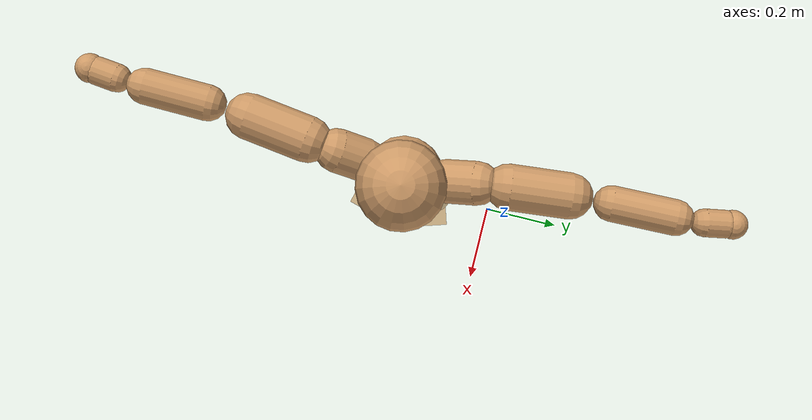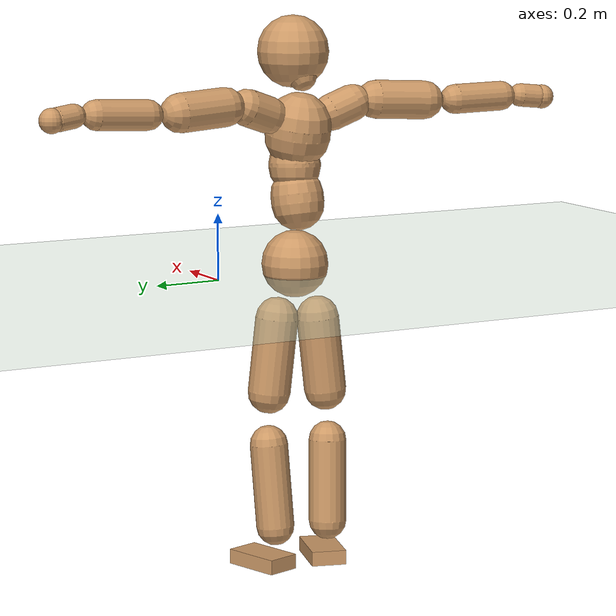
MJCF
<mujoco model="humanoid">
  <compiler coordinate="local"/>
  <default>
    <joint damping="0.0" armature="0.01" stiffness="0.0" limited="true"/>
    <geom conaffinity="1" condim="3" contype="7" margin="0.001" rgba="0.8 0.6 .4 1"/>
  </default>
  <asset>
    <texture type="skybox" builtin="gradient" rgb1=".4 .5 .6" rgb2="0 0 0" width="100" height="100"/>
    <texture builtin="flat" height="1278" mark="cross" markrgb="1 1 1" name="texgeom" random="0.01" rgb1="0.8 0.6 0.4" rgb2="0.8 0.6 0.4" type="cube" width="127"/>
    <texture builtin="checker" height="100" name="texplane" rgb1="0 0 0" rgb2="0.8 0.8 0.8" type="2d" width="100"/>
    <material name="MatPlane" reflectance="0.5" shininess="1" specular="1" texrepeat="60 60" texture="texplane"/>
    <material name="geom" texture="texgeom" texuniform="true"/>
  </asset>
  <worldbody>
    <light cutoff="100" diffuse="1 1 1" dir="-0 0 -1.3" directional="true" exponent="1" pos="0 0 1.3" specular=".1 .1 .1"/>
    <geom conaffinity="1" condim="3" name="floor" pos="0 0 0" rgba="0.8 0.9 0.8 1" size="100 100 .2" type="plane" material="MatPlane"/>
    <body name="Pelvis" pos="-0.003 -0.2538 0.0332">
      <freejoint name="Pelvis"/>
      <geom type="sphere" contype="1" conaffinity="1" density="500" size="0.1013" pos="0.0000 0.0000 0.0000" name="Pelvis"/>
      <body name="L_Hip" pos="-0.0161 0.0611 -0.0841">
        <joint name="L_Hip_x" type="hinge" pos="0 0 0" axis="1 0 0" stiffness="800" damping="80" armature="0.02" range="-180.0000 180.0000"/>
        <joint name="L_Hip_y" type="hinge" pos="0 0 0" axis="0 1 0" stiffness="800" damping="80" armature="0.02" range="-180.0000 180.0000"/>
        <joint name="L_Hip_z" type="hinge" pos="0 0 0" axis="0 0 1" stiffness="800" damping="80" armature="0.02" range="-180.0000 180.0000"/>
        <geom type="capsule" contype="1" conaffinity="1" density="500" fromto="0.0015 0.0081 -0.0750 0.0060 0.0323 -0.2999" size="0.0646" name="L_Hip"/>
        <body name="L_Knee" pos="0.0075 0.0403 -0.3748">
          <joint name="L_Knee_x" type="hinge" pos="0 0 0" axis="1 0 0" stiffness="800" damping="80" armature="0.02" range="-180.0000 180.0000"/>
          <joint name="L_Knee_y" type="hinge" pos="0 0 0" axis="0 1 0" stiffness="800" damping="80" armature="0.02" range="-180.0000 180.0000"/>
          <joint name="L_Knee_z" type="hinge" pos="0 0 0" axis="0 0 1" stiffness="800" damping="80" armature="0.02" range="-180.0000 180.0000"/>
          <geom type="capsule" contype="1" conaffinity="1" density="500" fromto="-0.0078 -0.0032 -0.0839 -0.0313 -0.0126 -0.3356" size="0.0574" name="L_Knee"/>
          <body name="L_Ankle" pos="-0.0391 -0.0158 -0.4195">
            <joint name="L_Ankle_x" type="hinge" pos="0 0 0" axis="1 0 0" stiffness="800" damping="80" armature="0.02" range="-180.0000 180.0000"/>
            <joint name="L_Ankle_y" type="hinge" pos="0 0 0" axis="0 1 0" stiffness="800" damping="80" armature="0.02" range="-180.0000 180.0000"/>
            <joint name="L_Ankle_z" type="hinge" pos="0 0 0" axis="0 0 1" stiffness="800" damping="80" armature="0.02" range="-180.0000 180.0000"/>
            <geom type="box" contype="1" conaffinity="1" density="500" pos="0.0618 0.0190 -0.0299" size="0.091 0.0517 0.0225" quat="0.9889 0.0000 0.0000 0.1487" name="L_Ankle"/>
            <body name="L_Toe" pos="0.1236 0.038 -0.0599">
              <joint name="L_Toe_x" type="hinge" pos="0 0 0" axis="1 0 0" stiffness="500" damping="50" armature="0.02" range="-180.0000 180.0000"/>
              <joint name="L_Toe_y" type="hinge" pos="0 0 0" axis="0 1 0" stiffness="500" damping="50" armature="0.02" range="-180.0000 180.0000"/>
              <joint name="L_Toe_z" type="hinge" pos="0 0 0" axis="0 0 1" stiffness="500" damping="50" armature="0.02" range="-180.0000 180.0000"/>
              <geom type="box" contype="1" conaffinity="1" density="500" pos="0.0000 0.0000 0.0286" size="0.0011 0.0026 0.0011" quat="0.9881 0.0000 0.0000 0.1537" name="L_Toe"/>
            </body>
          </body>
        </body>
      </body>
      <body name="R_Hip" pos="-0.0114 -0.0629 -0.0923">
        <joint name="R_Hip_x" type="hinge" pos="0 0 0" axis="1 0 0" stiffness="800" damping="80" armature="0.02" range="-180.0000 180.0000"/>
        <joint name="R_Hip_y" type="hinge" pos="0 0 0" axis="0 1 0" stiffness="800" damping="80" armature="0.02" range="-180.0000 180.0000"/>
        <joint name="R_Hip_z" type="hinge" pos="0 0 0" axis="0 0 1" stiffness="800" damping="80" armature="0.02" range="-180.0000 180.0000"/>
        <geom type="capsule" contype="1" conaffinity="1" density="500" fromto="-0.0011 -0.0080 -0.0748 -0.0043 -0.0321 -0.2992" size="0.0642" name="R_Hip"/>
        <body name="R_Knee" pos="-0.0053 -0.0401 -0.374">
          <joint name="R_Knee_x" type="hinge" pos="0 0 0" axis="1 0 0" stiffness="800" damping="80" armature="0.02" range="-180.0000 180.0000"/>
          <joint name="R_Knee_y" type="hinge" pos="0 0 0" axis="0 1 0" stiffness="800" damping="80" armature="0.02" range="-180.0000 180.0000"/>
          <joint name="R_Knee_z" type="hinge" pos="0 0 0" axis="0 0 1" stiffness="800" damping="80" armature="0.02" range="-180.0000 180.0000"/>
          <geom type="capsule" contype="1" conaffinity="1" density="500" fromto="-0.0072 0.0039 -0.0826 -0.0290 0.0155 -0.3303" size="0.0574" name="R_Knee"/>
          <body name="R_Ankle" pos="-0.0362 0.0194 -0.4128">
            <joint name="R_Ankle_x" type="hinge" pos="0 0 0" axis="1 0 0" stiffness="800" damping="80" armature="0.02" range="-180.0000 180.0000"/>
            <joint name="R_Ankle_y" type="hinge" pos="0 0 0" axis="0 1 0" stiffness="800" damping="80" armature="0.02" range="-180.0000 180.0000"/>
            <joint name="R_Ankle_z" type="hinge" pos="0 0 0" axis="0 0 1" stiffness="800" damping="80" armature="0.02" range="-180.0000 180.0000"/>
            <geom type="box" contype="1" conaffinity="1" density="500" pos="0.0659 -0.0181 -0.0304" size="0.0917 0.0529 0.0222" quat="0.9911 0.0000 0.0000 -0.1333" name="R_Ankle"/>
            <body name="R_Toe" pos="0.1318 -0.0361 -0.0608">
              <joint name="R_Toe_x" type="hinge" pos="0 0 0" axis="1 0 0" stiffness="500" damping="50" armature="0.02" range="-180.0000 180.0000"/>
              <joint name="R_Toe_y" type="hinge" pos="0 0 0" axis="0 1 0" stiffness="500" damping="50" armature="0.02" range="-180.0000 180.0000"/>
              <joint name="R_Toe_z" type="hinge" pos="0 0 0" axis="0 0 1" stiffness="500" damping="50" armature="0.02" range="-180.0000 180.0000"/>
              <geom type="box" contype="1" conaffinity="1" density="500" pos="0.0000 0.0000 0.0303" size="0.0011 0.0026 0.0011" quat="0.9922 0.0000 0.0000 -0.1244" name="R_Toe"/>
            </body>
          </body>
        </body>
      </body>
      <body name="Torso" pos="-0.0428 0.0044 0.1279">
        <joint name="Torso_x" type="hinge" pos="0 0 0" axis="1 0 0" stiffness="1000" damping="100" armature="0.02" range="-180.0000 180.0000"/>
        <joint name="Torso_y" type="hinge" pos="0 0 0" axis="0 1 0" stiffness="1000" damping="100" armature="0.02" range="-180.0000 180.0000"/>
        <joint name="Torso_z" type="hinge" pos="0 0 0" axis="0 0 1" stiffness="1000" damping="100" armature="0.02" range="-180.0000 180.0000"/>
        <geom type="capsule" contype="1" conaffinity="1" density="500" fromto="0.0159 0.0030 0.0857 0.0106 0.0020 0.0572" size="0.079236" name="Torso"/>
        <body name="Spine" pos="0.0265 0.005 0.1429">
          <joint name="Spine_x" type="hinge" pos="0 0 0" axis="1 0 0" stiffness="1000" damping="100" armature="0.02" range="-180.0000 180.0000"/>
          <joint name="Spine_y" type="hinge" pos="0 0 0" axis="0 1 0" stiffness="1000" damping="100" armature="0.02" range="-180.0000 180.0000"/>
          <joint name="Spine_z" type="hinge" pos="0 0 0" axis="0 0 1" stiffness="1000" damping="100" armature="0.02" range="-180.0000 180.0000"/>
          <geom type="capsule" contype="1" conaffinity="1" density="500" fromto="0.0025 -0.0013 0.0351 0.0016 -0.0009 0.0234" size="0.077934" name="Spine"/>
          <body name="Chest" pos="0.0041 -0.0022 0.0584">
            <joint name="Chest_x" type="hinge" pos="0 0 0" axis="1 0 0" stiffness="1000" damping="100" armature="0.02" range="-180.0000 180.0000"/>
            <joint name="Chest_y" type="hinge" pos="0 0 0" axis="0 1 0" stiffness="1000" damping="100" armature="0.02" range="-180.0000 180.0000"/>
            <joint name="Chest_z" type="hinge" pos="0 0 0" axis="0 0 1" stiffness="1000" damping="100" armature="0.02" range="-180.0000 180.0000"/>
            <geom type="capsule" contype="1" conaffinity="1" density="500" fromto="-0.0163 -0.0049 0.0900 -0.0109 -0.0032 0.0600" size="0.098766" name="Chest"/>
            <body name="Neck" pos="-0.0367 -0.0134 0.218">
              <joint name="Neck_x" type="hinge" pos="0 0 0" axis="1 0 0" stiffness="500" damping="50" armature="0.02" range="-180.0000 180.0000"/>
              <joint name="Neck_y" type="hinge" pos="0 0 0" axis="0 1 0" stiffness="500" damping="50" armature="0.02" range="-180.0000 180.0000"/>
              <joint name="Neck_z" type="hinge" pos="0 0 0" axis="0 0 1" stiffness="500" damping="50" armature="0.02" range="-180.0000 180.0000"/>
              <geom type="capsule" contype="1" conaffinity="1" density="500" fromto="0.0103 0.0021 0.0179 0.0414 0.0083 0.0715" size="0.043617" name="Neck"/>
              <body name="Head" pos="0.0517 0.0103 0.0894">
                <joint name="Head_x" type="hinge" pos="0 0 0" axis="1 0 0" stiffness="500" damping="50" armature="0.02" range="-180.0000 180.0000"/>
                <joint name="Head_y" type="hinge" pos="0 0 0" axis="0 1 0" stiffness="500" damping="50" armature="0.02" range="-180.0000 180.0000"/>
                <joint name="Head_z" type="hinge" pos="0 0 0" axis="0 0 1" stiffness="500" damping="50" armature="0.02" range="-180.0000 180.0000"/>
                <geom type="sphere" contype="1" conaffinity="1" density="500" size="0.1078" pos="0.0000 0.0000 0.0000" name="Head"/>
              </body>
            </body>
            <body name="L_Thorax" pos="-0.0195 0.0737 0.117">
              <joint name="L_Thorax_x" type="hinge" pos="0 0 0" axis="1 0 0" stiffness="500" damping="50" armature="0.02" range="-180.0000 180.0000"/>
              <joint name="L_Thorax_y" type="hinge" pos="0 0 0" axis="0 1 0" stiffness="500" damping="50" armature="0.02" range="-180.0000 180.0000"/>
              <joint name="L_Thorax_z" type="hinge" pos="0 0 0" axis="0 0 1" stiffness="500" damping="50" armature="0.02" range="-180.0000 180.0000"/>
              <geom type="capsule" contype="1" conaffinity="1" density="500" fromto="-0.0043 0.0254 0.0089 -0.0172 0.1018 0.0357" size="0.0552" name="L_Thorax"/>
              <body name="L_Shoulder" pos="-0.0215 0.1272 0.0446">
                <joint name="L_Shoulder_x" type="hinge" pos="0 0 0" axis="1 0 0" stiffness="500" damping="50" armature="0.02" range="-720.0000 720.0000"/>
                <joint name="L_Shoulder_y" type="hinge" pos="0 0 0" axis="0 1 0" stiffness="500" damping="50" armature="0.02" range="-720.0000 720.0000"/>
                <joint name="L_Shoulder_z" type="hinge" pos="0 0 0" axis="0 0 1" stiffness="500" damping="50" armature="0.02" range="-720.0000 720.0000"/>
                <geom type="capsule" contype="1" conaffinity="1" density="500" fromto="-0.0050 0.0504 -0.0030 -0.0200 0.2017 -0.0118" size="0.058" name="L_Shoulder"/>
                <body name="L_Elbow" pos="-0.025 0.2521 -0.0148">
                  <joint name="L_Elbow_x" type="hinge" pos="0 0 0" axis="1 0 0" stiffness="500" damping="50" armature="0.02" range="-720.0000 720.0000"/>
                  <joint name="L_Elbow_y" type="hinge" pos="0 0 0" axis="0 1 0" stiffness="500" damping="50" armature="0.02" range="-720.0000 720.0000"/>
                  <joint name="L_Elbow_z" type="hinge" pos="0 0 0" axis="0 0 1" stiffness="500" damping="50" armature="0.02" range="-720.0000 720.0000"/>
                  <geom type="capsule" contype="1" conaffinity="1" density="500" fromto="-0.0012 0.0532 0.0027 -0.0048 0.2129 0.0108" size="0.0448" name="L_Elbow"/>
                  <body name="L_Wrist" pos="-0.0059 0.2662 0.0136">
                    <joint name="L_Wrist_x" type="hinge" pos="0 0 0" axis="1 0 0" stiffness="300" damping="30" armature="0.02" range="-180.0000 180.0000"/>
                    <joint name="L_Wrist_y" type="hinge" pos="0 0 0" axis="0 1 0" stiffness="300" damping="30" armature="0.02" range="-180.0000 180.0000"/>
                    <joint name="L_Wrist_z" type="hinge" pos="0 0 0" axis="0 0 1" stiffness="300" damping="30" armature="0.02" range="-180.0000 180.0000"/>
                    <geom type="capsule" contype="1" conaffinity="1" density="500" fromto="-0.0032 0.0178 -0.0022 -0.0127 0.0710 -0.0088" size="0.0352" name="L_Wrist"/>
                    <body name="L_Hand" pos="-0.0158 0.0888 -0.011">
                      <joint name="L_Hand_x" type="hinge" pos="0 0 0" axis="1 0 0" stiffness="300" damping="30" armature="0.02" range="-180.0000 180.0000"/>
                      <joint name="L_Hand_y" type="hinge" pos="0 0 0" axis="0 1 0" stiffness="300" damping="30" armature="0.02" range="-180.0000 180.0000"/>
                      <joint name="L_Hand_z" type="hinge" pos="0 0 0" axis="0 0 1" stiffness="300" damping="30" armature="0.02" range="-180.0000 180.0000"/>
                      <geom type="sphere" contype="1" conaffinity="1" density="500" size="0.0365" pos="0.0000 0.0000 0.0000" name="L_Hand"/>
                    </body>
                  </body>
                </body>
              </body>
            </body>
            <body name="R_Thorax" pos="-0.0252 -0.0846 0.1149">
              <joint name="R_Thorax_x" type="hinge" pos="0 0 0" axis="1 0 0" stiffness="500" damping="50" armature="0.02" range="-180.0000 180.0000"/>
              <joint name="R_Thorax_y" type="hinge" pos="0 0 0" axis="0 1 0" stiffness="500" damping="50" armature="0.02" range="-180.0000 180.0000"/>
              <joint name="R_Thorax_z" type="hinge" pos="0 0 0" axis="0 0 1" stiffness="500" damping="50" armature="0.02" range="-180.0000 180.0000"/>
              <geom type="capsule" contype="1" conaffinity="1" density="500" fromto="-0.0021 -0.0233 0.0092 -0.0082 -0.0934 0.0368" size="0.055" name="R_Thorax"/>
              <body name="R_Shoulder" pos="-0.0103 -0.1167 0.046">
                <joint name="R_Shoulder_x" type="hinge" pos="0 0 0" axis="1 0 0" stiffness="500" damping="50" armature="0.02" range="-720.0000 720.0000"/>
                <joint name="R_Shoulder_y" type="hinge" pos="0 0 0" axis="0 1 0" stiffness="500" damping="50" armature="0.02" range="-720.0000 720.0000"/>
                <joint name="R_Shoulder_z" type="hinge" pos="0 0 0" axis="0 0 1" stiffness="500" damping="50" armature="0.02" range="-720.0000 720.0000"/>
                <geom type="capsule" contype="1" conaffinity="1" density="500" fromto="-0.0070 -0.0515 -0.0024 -0.0279 -0.2062 -0.0094" size="0.0584" name="R_Shoulder"/>
                <body name="R_Elbow" pos="-0.0348 -0.2577 -0.0118">
                  <joint name="R_Elbow_x" type="hinge" pos="0 0 0" axis="1 0 0" stiffness="500" damping="50" armature="0.02" range="-720.0000 720.0000"/>
                  <joint name="R_Elbow_y" type="hinge" pos="0 0 0" axis="0 1 0" stiffness="500" damping="50" armature="0.02" range="-720.0000 720.0000"/>
                  <joint name="R_Elbow_z" type="hinge" pos="0 0 0" axis="0 0 1" stiffness="500" damping="50" armature="0.02" range="-720.0000 720.0000"/>
                  <geom type="capsule" contype="1" conaffinity="1" density="500" fromto="-0.0011 -0.0534 0.0011 -0.0042 -0.2138 0.0042" size="0.0452" name="R_Elbow"/>
                  <body name="R_Wrist" pos="-0.0053 -0.2672 0.0053">
                    <joint name="R_Wrist_x" type="hinge" pos="0 0 0" axis="1 0 0" stiffness="300" damping="30" armature="0.02" range="-180.0000 180.0000"/>
                    <joint name="R_Wrist_y" type="hinge" pos="0 0 0" axis="0 1 0" stiffness="300" damping="30" armature="0.02" range="-180.0000 180.0000"/>
                    <joint name="R_Wrist_z" type="hinge" pos="0 0 0" axis="0 0 1" stiffness="300" damping="30" armature="0.02" range="-180.0000 180.0000"/>
                    <geom type="capsule" contype="1" conaffinity="1" density="500" fromto="-0.0020 -0.0181 -0.0018 -0.0081 -0.0724 -0.0072" size="0.0358" name="R_Wrist"/>
                    <body name="R_Hand" pos="-0.0102 -0.0905 -0.009">
                      <joint name="R_Hand_x" type="hinge" pos="0 0 0" axis="1 0 0" stiffness="300" damping="30" armature="0.02" range="-180.0000 180.0000"/>
                      <joint name="R_Hand_y" type="hinge" pos="0 0 0" axis="0 1 0" stiffness="300" damping="30" armature="0.02" range="-180.0000 180.0000"/>
                      <joint name="R_Hand_z" type="hinge" pos="0 0 0" axis="0 0 1" stiffness="300" damping="30" armature="0.02" range="-180.0000 180.0000"/>
                      <geom type="sphere" contype="1" conaffinity="1" density="500" size="0.0369" pos="0.0000 0.0000 0.0000" name="R_Hand"/>
                    </body>
                  </body>
                </body>
              </body>
            </body>
          </body>
        </body>
      </body>
    </body>
  </worldbody>
  <actuator>
    <motor name="L_Hip_x" joint="L_Hip_x" gear="500"/>
    <motor name="L_Hip_y" joint="L_Hip_y" gear="500"/>
    <motor name="L_Hip_z" joint="L_Hip_z" gear="500"/>
    <motor name="L_Knee_x" joint="L_Knee_x" gear="500"/>
    <motor name="L_Knee_y" joint="L_Knee_y" gear="500"/>
    <motor name="L_Knee_z" joint="L_Knee_z" gear="500"/>
    <motor name="L_Ankle_x" joint="L_Ankle_x" gear="500"/>
    <motor name="L_Ankle_y" joint="L_Ankle_y" gear="500"/>
    <motor name="L_Ankle_z" joint="L_Ankle_z" gear="500"/>
    <motor name="L_Toe_x" joint="L_Toe_x" gear="500"/>
    <motor name="L_Toe_y" joint="L_Toe_y" gear="500"/>
    <motor name="L_Toe_z" joint="L_Toe_z" gear="500"/>
    <motor name="R_Hip_x" joint="R_Hip_x" gear="500"/>
    <motor name="R_Hip_y" joint="R_Hip_y" gear="500"/>
    <motor name="R_Hip_z" joint="R_Hip_z" gear="500"/>
    <motor name="R_Knee_x" joint="R_Knee_x" gear="500"/>
    <motor name="R_Knee_y" joint="R_Knee_y" gear="500"/>
    <motor name="R_Knee_z" joint="R_Knee_z" gear="500"/>
    <motor name="R_Ankle_x" joint="R_Ankle_x" gear="500"/>
    <motor name="R_Ankle_y" joint="R_Ankle_y" gear="500"/>
    <motor name="R_Ankle_z" joint="R_Ankle_z" gear="500"/>
    <motor name="R_Toe_x" joint="R_Toe_x" gear="500"/>
    <motor name="R_Toe_y" joint="R_Toe_y" gear="500"/>
    <motor name="R_Toe_z" joint="R_Toe_z" gear="500"/>
    <motor name="Torso_x" joint="Torso_x" gear="500"/>
    <motor name="Torso_y" joint="Torso_y" gear="500"/>
    <motor name="Torso_z" joint="Torso_z" gear="500"/>
    <motor name="Spine_x" joint="Spine_x" gear="500"/>
    <motor name="Spine_y" joint="Spine_y" gear="500"/>
    <motor name="Spine_z" joint="Spine_z" gear="500"/>
    <motor name="Chest_x" joint="Chest_x" gear="500"/>
    <motor name="Chest_y" joint="Chest_y" gear="500"/>
    <motor name="Chest_z" joint="Chest_z" gear="500"/>
    <motor name="Neck_x" joint="Neck_x" gear="500"/>
    <motor name="Neck_y" joint="Neck_y" gear="500"/>
    <motor name="Neck_z" joint="Neck_z" gear="500"/>
    <motor name="Head_x" joint="Head_x" gear="500"/>
    <motor name="Head_y" joint="Head_y" gear="500"/>
    <motor name="Head_z" joint="Head_z" gear="500"/>
    <motor name="L_Thorax_x" joint="L_Thorax_x" gear="500"/>
    <motor name="L_Thorax_y" joint="L_Thorax_y" gear="500"/>
    <motor name="L_Thorax_z" joint="L_Thorax_z" gear="500"/>
    <motor name="L_Shoulder_x" joint="L_Shoulder_x" gear="500"/>
    <motor name="L_Shoulder_y" joint="L_Shoulder_y" gear="500"/>
    <motor name="L_Shoulder_z" joint="L_Shoulder_z" gear="500"/>
    <motor name="L_Elbow_x" joint="L_Elbow_x" gear="500"/>
    <motor name="L_Elbow_y" joint="L_Elbow_y" gear="500"/>
    <motor name="L_Elbow_z" joint="L_Elbow_z" gear="500"/>
    <motor name="L_Wrist_x" joint="L_Wrist_x" gear="500"/>
    <motor name="L_Wrist_y" joint="L_Wrist_y" gear="500"/>
    <motor name="L_Wrist_z" joint="L_Wrist_z" gear="500"/>
    <motor name="L_Hand_x" joint="L_Hand_x" gear="500"/>
    <motor name="L_Hand_y" joint="L_Hand_y" gear="500"/>
    <motor name="L_Hand_z" joint="L_Hand_z" gear="500"/>
    <motor name="R_Thorax_x" joint="R_Thorax_x" gear="500"/>
    <motor name="R_Thorax_y" joint="R_Thorax_y" gear="500"/>
    <motor name="R_Thorax_z" joint="R_Thorax_z" gear="500"/>
    <motor name="R_Shoulder_x" joint="R_Shoulder_x" gear="500"/>
    <motor name="R_Shoulder_y" joint="R_Shoulder_y" gear="500"/>
    <motor name="R_Shoulder_z" joint="R_Shoulder_z" gear="500"/>
    <motor name="R_Elbow_x" joint="R_Elbow_x" gear="500"/>
    <motor name="R_Elbow_y" joint="R_Elbow_y" gear="500"/>
    <motor name="R_Elbow_z" joint="R_Elbow_z" gear="500"/>
    <motor name="R_Wrist_x" joint="R_Wrist_x" gear="500"/>
    <motor name="R_Wrist_y" joint="R_Wrist_y" gear="500"/>
    <motor name="R_Wrist_z" joint="R_Wrist_z" gear="500"/>
    <motor name="R_Hand_x" joint="R_Hand_x" gear="500"/>
    <motor name="R_Hand_y" joint="R_Hand_y" gear="500"/>
    <motor name="R_Hand_z" joint="R_Hand_z" gear="500"/>
  </actuator>
  <contact>
    <exclude body1="Torso" body2="Chest"/>
    <exclude body1="Head" body2="Chest"/>
    <exclude body1="R_Knee" body2="R_Toe"/>
    <exclude body1="R_Knee" body2="L_Ankle"/>
    <exclude body1="R_Knee" body2="L_Toe"/>
    <exclude body1="L_Knee" body2="L_Toe"/>
    <exclude body1="L_Knee" body2="R_Ankle"/>
    <exclude body1="L_Knee" body2="R_Toe"/>
    <exclude body1="L_Shoulder" body2="Chest"/>
    <exclude body1="R_Shoulder" body2="Chest"/>
  </contact>
  <sensor/>
  <size njmax="700" nconmax="700"/>
</mujoco>
